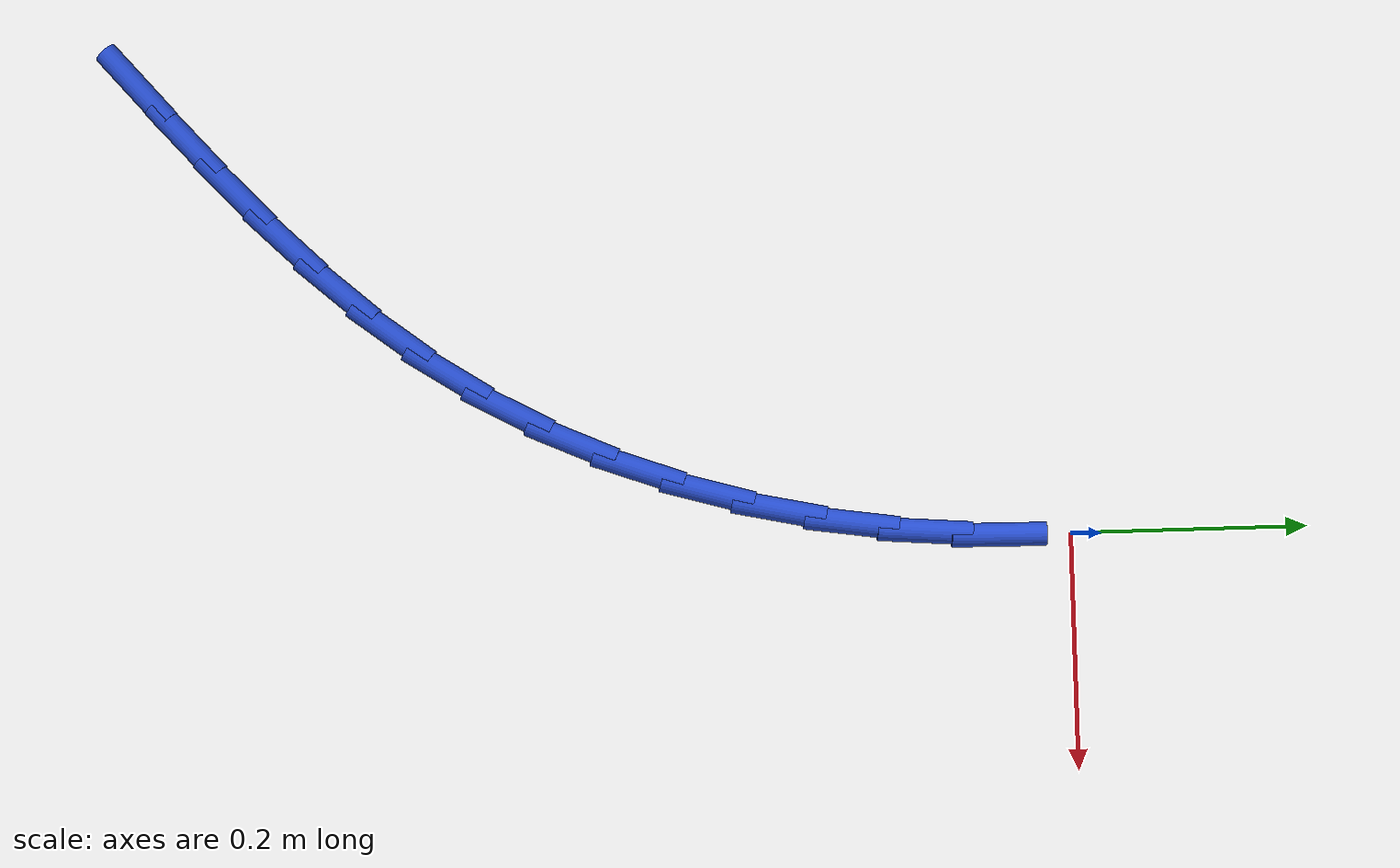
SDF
<sdf version="1.6">
 <world name="default">
  <model name="ground_plane">
   <static>1</static>
   <link name="link">
    <collision name="collision">
     <geometry><plane><normal>0 0 1</normal><size>100 100</size></plane></geometry>
     <surface><friction><ode><mu>100</mu><mu2>50</mu2></ode></friction></surface>
    </collision>
    <visual name="visual">
     <cast_shadows>0</cast_shadows>
     <geometry><plane><normal>0 0 1</normal><size>100 100</size></plane></geometry>
     <material>
      <script><uri>file://media/materials/scripts/gazebo.material</uri><name>Gazebo/WhiteGlow</name></script>
     </material>
    </visual>
   </link>
  </model>
  <model name="line">
   <link name="link_105">
    <pose>-0.4011538790094608 -0.780602692227049 0.01 0 1.57 0.7142464081609622</pose>
    <collision name="collision">
     <geometry><cylinder><radius>0.01</radius><length>0.08</length></cylinder></geometry>
    </collision>
    <visual name="visual">
     <material>
      <script><name>Gazebo/Blue</name><uri>file://media/materials/scripts/gazebo.material</uri></script>
     </material>
     <geometry><cylinder><radius>0.01</radius><length>0.08</length></cylinder></geometry>
    </visual>
   </link>
   <link name="link_106">
    <pose>-0.3542919574697535 -0.739976247575223 0.01 0 1.57 0.7310694050404204</pose>
    <collision name="collision">
     <geometry><cylinder><radius>0.01</radius><length>0.08</length></cylinder></geometry>
    </collision>
    <visual name="visual">
     <material>
      <script><name>Gazebo/Blue</name><uri>file://media/materials/scripts/gazebo.material</uri></script>
     </material>
     <geometry><cylinder><radius>0.01</radius><length>0.08</length></cylinder></geometry>
    </visual>
   </link>
   <link name="link_107">
    <pose>-0.3088508441538771 -0.6992226012971406 0.01 0 1.57 0.7602243401867649</pose>
    <collision name="collision">
     <geometry><cylinder><radius>0.01</radius><length>0.08</length></cylinder></geometry>
    </collision>
    <visual name="visual">
     <material>
      <script><name>Gazebo/Blue</name><uri>file://media/materials/scripts/gazebo.material</uri></script>
     </material>
     <geometry><cylinder><radius>0.01</radius><length>0.08</length></cylinder></geometry>
    </visual>
   </link>
   <link name="link_108">
    <pose>-0.26524788348696554 -0.6577614812228909 0.01 0 1.57 0.8020608733319339</pose>
    <collision name="collision">
     <geometry><cylinder><radius>0.01</radius><length>0.08</length></cylinder></geometry>
    </collision>
    <visual name="visual">
     <material>
      <script><name>Gazebo/Blue</name><uri>file://media/materials/scripts/gazebo.material</uri></script>
     </material>
     <geometry><cylinder><radius>0.01</radius><length>0.08</length></cylinder></geometry>
    </visual>
   </link>
   <link name="link_109">
    <pose>-0.2239004198941549 -0.6150126151825653 0.01 0 1.57 0.8566204446312826</pose>
    <collision name="collision">
     <geometry><cylinder><radius>0.01</radius><length>0.08</length></cylinder></geometry>
    </collision>
    <visual name="visual">
     <material>
      <script><name>Gazebo/Blue</name><uri>file://media/materials/scripts/gazebo.material</uri></script>
     </material>
     <geometry><cylinder><radius>0.01</radius><length>0.08</length></cylinder></geometry>
    </visual>
   </link>
   <link name="link_110">
    <pose>-0.18522579780057918 -0.5703957310062527 0.01 0 1.57 0.9234234848030196</pose>
    <collision name="collision">
     <geometry><cylinder><radius>0.01</radius><length>0.08</length></cylinder></geometry>
    </collision>
    <visual name="visual">
     <material>
      <script><name>Gazebo/Blue</name><uri>file://media/materials/scripts/gazebo.material</uri></script>
     </material>
     <geometry><cylinder><radius>0.01</radius><length>0.08</length></cylinder></geometry>
    </visual>
   </link>
   <link name="link_111">
    <pose>-0.14964136163137315 -0.5233305565240431 0.01 0 1.57 1.0008934923524513</pose>
    <collision name="collision">
     <geometry><cylinder><radius>0.01</radius><length>0.08</length></cylinder></geometry>
    </collision>
    <visual name="visual">
     <material>
      <script><name>Gazebo/Blue</name><uri>file://media/materials/scripts/gazebo.material</uri></script>
     </material>
     <geometry><cylinder><radius>0.01</radius><length>0.08</length></cylinder></geometry>
    </visual>
   </link>
   <link name="link_112">
    <pose>-0.11755569618406578 -0.4732617526454712 0.01 0 1.57 1.0804410025135633</pose>
    <collision name="collision">
     <geometry><cylinder><radius>0.01</radius><length>0.08</length></cylinder></geometry>
    </collision>
    <visual name="visual">
     <material>
      <script><name>Gazebo/Blue</name><uri>file://media/materials/scripts/gazebo.material</uri></script>
     </material>
     <geometry><cylinder><radius>0.01</radius><length>0.08</length></cylinder></geometry>
    </visual>
   </link>
   <link name="link_113">
    <pose>-0.08919854658467322 -0.4201430228945389 0.01 0 1.57 1.1556779863545918</pose>
    <collision name="collision">
     <geometry><cylinder><radius>0.01</radius><length>0.08</length></cylinder></geometry>
    </collision>
    <visual name="visual">
     <material>
      <script><name>Gazebo/Blue</name><uri>file://media/materials/scripts/gazebo.material</uri></script>
     </material>
     <geometry><cylinder><radius>0.01</radius><length>0.08</length></cylinder></geometry>
    </visual>
   </link>
   <link name="link_114">
    <pose>-0.06463255513572884 -0.3644037060803553 0.01 0 1.57 1.2272268906382056</pose>
    <collision name="collision">
     <geometry><cylinder><radius>0.01</radius><length>0.08</length></cylinder></geometry>
    </collision>
    <visual name="visual">
     <material>
      <script><name>Gazebo/Blue</name><uri>file://media/materials/scripts/gazebo.material</uri></script>
     </material>
     <geometry><cylinder><radius>0.01</radius><length>0.08</length></cylinder></geometry>
    </visual>
   </link>
   <link name="link_115">
    <pose>-0.04391395527292038 -0.30649138297315226 0.01 0 1.57 1.295978572589593</pose>
    <collision name="collision">
     <geometry><cylinder><radius>0.01</radius><length>0.08</length></cylinder></geometry>
    </collision>
    <visual name="visual">
     <material>
      <script><name>Gazebo/Blue</name><uri>file://media/materials/scripts/gazebo.material</uri></script>
     </material>
     <geometry><cylinder><radius>0.01</radius><length>0.08</length></cylinder></geometry>
    </visual>
   </link>
   <link name="link_116">
    <pose>-0.027098980431936346 -0.24685363434316385 0.01 0 1.57 1.362816290290796</pose>
    <collision name="collision">
     <geometry><cylinder><radius>0.01</radius><length>0.08</length></cylinder></geometry>
    </collision>
    <visual name="visual">
     <material>
      <script><name>Gazebo/Blue</name><uri>file://media/materials/scripts/gazebo.material</uri></script>
     </material>
     <geometry><cylinder><radius>0.01</radius><length>0.08</length></cylinder></geometry>
    </visual>
   </link>
   <link name="link_117">
    <pose>-0.01424386404846433 -0.18593804096062178 0.01 0 1.57 1.4286106174589785</pose>
    <collision name="collision">
     <geometry><cylinder><radius>0.01</radius><length>0.08</length></cylinder></geometry>
    </collision>
    <visual name="visual">
     <material>
      <script><name>Gazebo/Blue</name><uri>file://media/materials/scripts/gazebo.material</uri></script>
     </material>
     <geometry><cylinder><radius>0.01</radius><length>0.08</length></cylinder></geometry>
    </visual>
   </link>
   <link name="link_118">
    <pose>-0.00540483955819231 -0.12419218359575895 0.01 0 1.57 1.4942231602661478</pose>
    <collision name="collision">
     <geometry><cylinder><radius>0.01</radius><length>0.08</length></cylinder></geometry>
    </collision>
    <visual name="visual">
     <material>
      <script><name>Gazebo/Blue</name><uri>file://media/materials/scripts/gazebo.material</uri></script>
     </material>
     <geometry><cylinder><radius>0.01</radius><length>0.08</length></cylinder></geometry>
    </visual>
   </link>
   <link name="link_119">
    <pose>-0.0006381403968081945 -0.062063643018806944 0.01 0 1.57 1.5605146565756265</pose>
    <collision name="collision">
     <geometry><cylinder><radius>0.01</radius><length>0.08</length></cylinder></geometry>
    </collision>
    <visual name="visual">
     <material>
      <script><name>Gazebo/Blue</name><uri>file://media/materials/scripts/gazebo.material</uri></script>
     </material>
     <geometry><cylinder><radius>0.01</radius><length>0.08</length></cylinder></geometry>
    </visual>
   </link>
  </model>
 </world>
</sdf>
